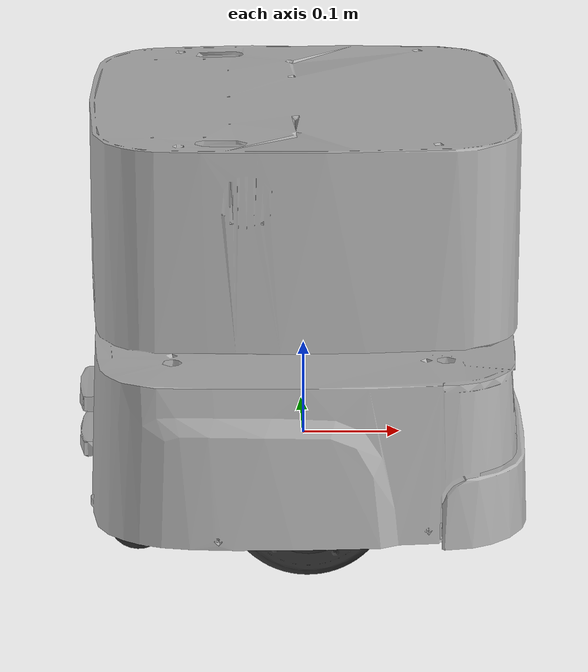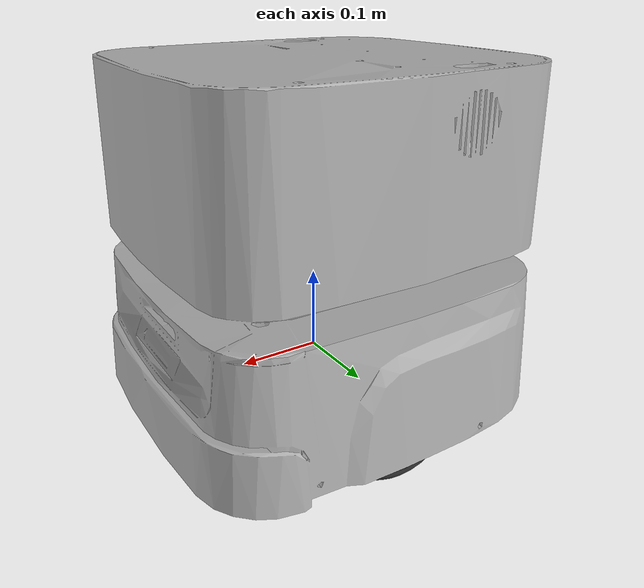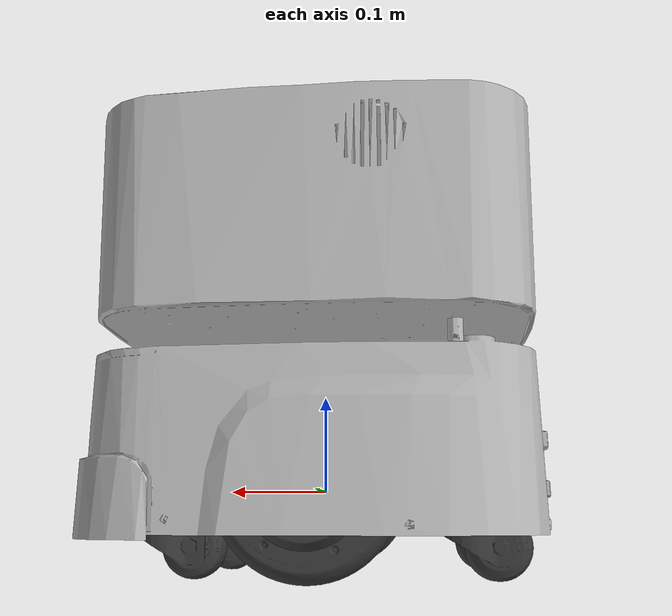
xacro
<?xml version="1.0" ?>
<robot name="kcare" xmlns:xacro="http://www.ros.org/wiki/xacro">

  <xacro:property name="package_name" value="kcare_description"/>
  <xacro:property name="mesh_path" value="package://${package_name}/meshes"/>
  <xacro:include filename="$(find kcare_description)/robots/common/link.xacro"/>

  <xacro:include filename="$(find kcare_description)/robots/slamware.urdf.xacro"/>

</robot>

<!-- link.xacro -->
<robot name="kcare" xmlns:xacro="http://www.ros.org/wiki/xacro">

  <xacro:include filename="$(find kcare_description)/robots/common/materials.xacro"/>

<xacro:macro name="common_link" params="
  name
  inertial_origin:='0 0 0'
  mass:='0.5'
  ixx:='0.002' iyy:='0.002' izz:='0.002'
  ixy:='0.0' iyz:='0.0' ixz:='0.0'
  mesh_file
  scale:='0.001 0.001 0.001'
  material:='kcare_silver'">

    <link name="${name}">
      <inertial>
        <origin xyz="${inertial_origin}" rpy="0 0 0"/>
        <mass value="${mass}"/>
        <inertia
          ixx="${ixx}" iyy="${iyy}" izz="${izz}"
          ixy="${ixy}" iyz="${iyz}" ixz="${ixz}"/>
      </inertial>
      <visual>
        <origin xyz="0 0 0" rpy="0 0 0"/>
        <geometry>
          <mesh filename="${mesh_file}" scale="${scale}"/>
        </geometry>
        <material name="${material}"/>
      </visual>
      <collision>
        <origin xyz="0 0 0" rpy="0 0 0"/>
        <geometry>
          <mesh filename="${mesh_file}" scale="${scale}"/>
        </geometry>
      </collision>
    </link>
  </xacro:macro>

</robot>

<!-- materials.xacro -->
<robot name="kcare" xmlns:xacro="http://www.ros.org/wiki/xacro">

<material name="kcare_silver">
  <color rgba="0.700 0.700 0.700 1.000"/>
</material>
<material name="kcare_black">
    <color rgba="0.2 0.2 0.2 1"/>
</material>
</robot>

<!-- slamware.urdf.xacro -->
<robot name="slamtec" xmlns:xacro="http://www.ros.org/wiki/xacro">

  <xacro:property name="mesh_path" value="package://kcare_description/meshes/"/>

  <xacro:common_link
    name="slam_base"
    mesh_file="${mesh_path}slamware/base_link.stl"
  />

  <xacro:common_link
    name="left_wheel"
    mesh_file="${mesh_path}slamware/slam_wheel.stl"
    material="kcare_black"
  />

  <xacro:common_link
    name="right_wheel"
    mesh_file="${mesh_path}slamware/slam_wheel.stl"
    material="kcare_black"
  />

  <xacro:common_link
    name="lf_caster"
    mesh_file="${mesh_path}slamware/caster.stl"
    material="kcare_black"
  />

  <xacro:common_link
    name="rf_caster"
     mesh_file="${mesh_path}slamware/caster.stl"
    material="kcare_black"
  />

  <xacro:common_link
    name="lb_caster"
    mesh_file="${mesh_path}slamware/caster.stl"
    material="kcare_black"
  />

  <xacro:common_link
    name="rb_caster"
    mesh_file="${mesh_path}slamware/caster.stl"
    material="kcare_black"
  />

  <link name="elevation_base">
  </link>

  <joint name="left_wheel_joint" type="continuous">
    <origin xyz="0.0 0.16885 0.0" rpy="0 0 ${-90 * pi/180}"/>
    <parent link="slam_base"/>
    <child link="left_wheel"/>
    <axis xyz="-1.0 0.0 0.0"/>
  </joint>

  <joint name="right_wheel_joint" type="continuous">
    <origin xyz="0.0 -0.16885 0.0" rpy="0 0 ${90 * pi/180}"/>
    <parent link="slam_base"/>
    <child link="right_wheel"/>
    <axis xyz="1.0 0.0 0.0"/>
  </joint>

  <joint name="caster1_fix_joint" type="fixed">
    <origin xyz="0.144 0.090 0.01125" rpy="0 0 0"/>
    <parent link="slam_base"/>
    <child link="lf_caster"/>
  </joint>

  <joint name="caster2_fix_joint" type="fixed">
    <origin xyz="0.144 -0.090 0.01125" rpy="0 0 0"/>
    <parent link="slam_base"/>
    <child link="rf_caster"/>
  </joint>

  <joint name="caster3_fix_joint" type="fixed">
    <origin xyz="-0.144 0.100 0.01125" rpy="0 0 0"/>
    <parent link="slam_base"/>
    <child link="lb_caster"/>
  </joint>

  <joint name="caster4_fix_joint" type="fixed">
    <origin xyz="-0.144 -0.100 0.01125" rpy="0 0 0"/>
    <parent link="slam_base"/>
    <child link="rb_caster"/>
  </joint>

  <joint name="slam_to_elev_fix_joint" type="fixed">
    <origin xyz="-0.04998 0.0 0.362985" rpy="0 0 0"/>
    <parent link="slam_base"/>
    <child link="elevation_base"/>
  </joint>

</robot>
